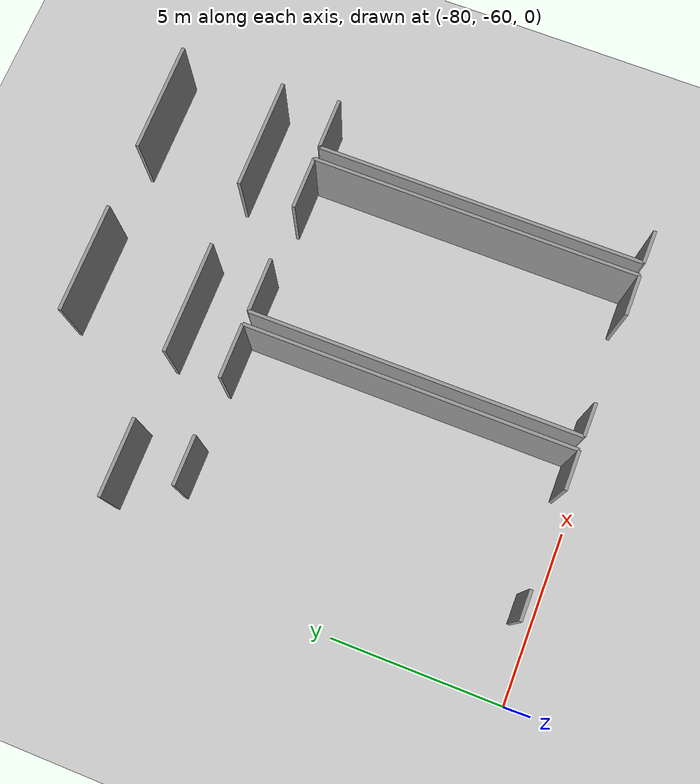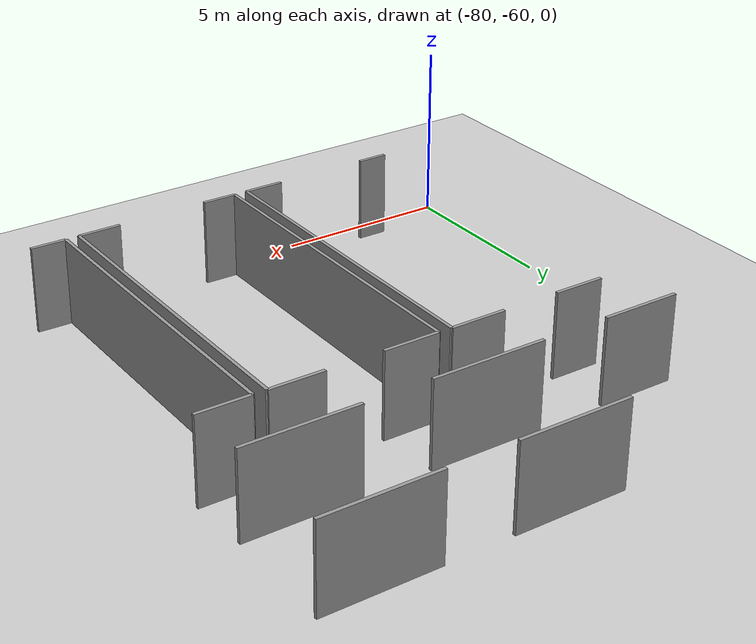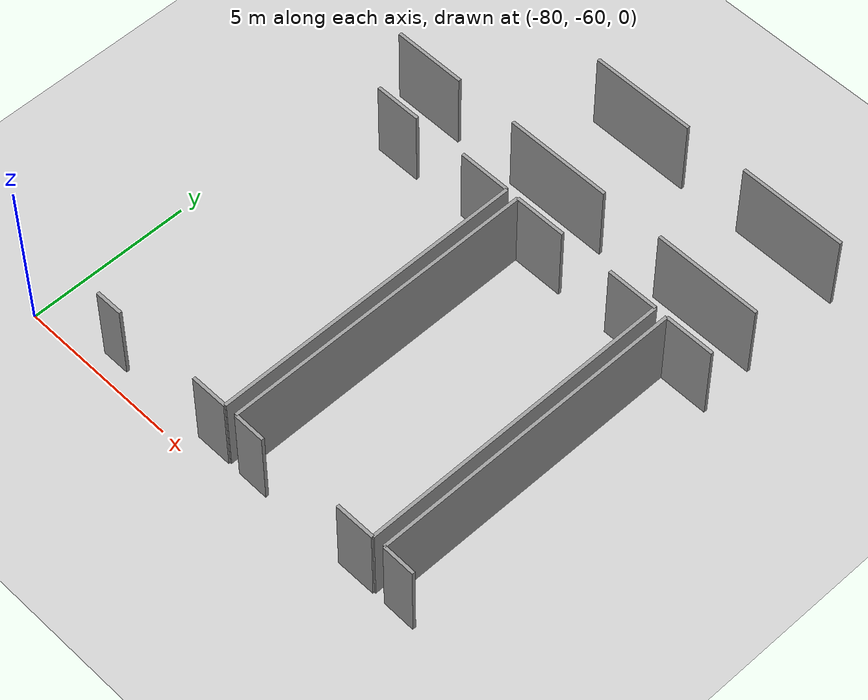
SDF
<sdf version="1.6">
 <world name="default">
  <model name="ground_plane">
   <static>1</static>
   <link name="link">
    <collision name="collision">
     <geometry><plane><normal>0 0 1</normal><size>100 100</size></plane></geometry>
     <surface><friction><ode><mu>100</mu><mu2>50</mu2></ode></friction></surface>
    </collision>
    <visual name="visual">
     <cast_shadows>0</cast_shadows>
     <geometry><plane><normal>0 0 1</normal><size>100 100</size></plane></geometry>
     <material>
      <script><uri>file://media/materials/scripts/gazebo.material</uri><name>Gazebo/Grey</name></script>
     </material>
    </visual>
   </link>
  </model>
  <model name="0510045922_A-40">
   <static>1</static>
   <link name="Wall_1121">
    <collision name="Wall_1121_Collision">
     <geometry><box><size>9.61631823092 0.1 2.5</size></box></geometry>
     <pose>4.80815911546 0 1.25 0 0 0</pose>
    </collision>
    <visual name="Wall_1121_Visual">
     <pose>4.80815911546 0 1.25 0 0 0</pose>
     <geometry><box><size>9.61631823092 0.1 2.5</size></box></geometry>
     <material>
      <script><uri>file://media/materials/scripts/gazebo.material</uri><name>Gazebo/Grey</name></script>
      <ambient>1 1 1 1</ambient>
     </material>
    </visual>
    <pose>66.6081718244 -160.609620639 0 0 0 1.57079632679</pose>
   </link>
   <link name="Wall_1122">
    <collision name="Wall_1122_Collision">
     <geometry><box><size>1.54057317151 0.1 2.5</size></box></geometry>
     <pose>0.770286585753 0 1.25 0 0 0</pose>
    </collision>
    <visual name="Wall_1122_Visual">
     <pose>0.770286585753 0 1.25 0 0 0</pose>
     <geometry><box><size>1.54057317151 0.1 2.5</size></box></geometry>
     <material>
      <script><uri>file://media/materials/scripts/gazebo.material</uri><name>Gazebo/Grey</name></script>
      <ambient>1 1 1 1</ambient>
     </material>
    </visual>
    <pose>66.6081718244 -150.993302408 0 0 0 0.0</pose>
   </link>
   <link name="Wall_1125">
    <collision name="Wall_1125_Collision">
     <geometry><box><size>1.01150940506 0.1 2.5</size></box></geometry>
     <pose>0.505754702532 0 1.25 0 0 0</pose>
    </collision>
    <visual name="Wall_1125_Visual">
     <pose>0.505754702532 0 1.25 0 0 0</pose>
     <geometry><box><size>1.01150940506 0.1 2.5</size></box></geometry>
     <material>
      <script><uri>file://media/materials/scripts/gazebo.material</uri><name>Gazebo/Grey</name></script>
      <ambient>1 1 1 1</ambient>
     </material>
    </visual>
    <pose>67.6195462922 -160.626142213 0 0 0 3.12525834371</pose>
   </link>
   <link name="Wall_1126">
    <collision name="Wall_1126_Collision">
     <geometry><box><size>9.62241850416 0.1 2.5</size></box></geometry>
     <pose>4.81120925208 0 1.25 0 0 0</pose>
    </collision>
    <visual name="Wall_1126_Visual">
     <pose>4.81120925208 0 1.25 0 0 0</pose>
     <geometry><box><size>9.62241850416 0.1 2.5</size></box></geometry>
     <material>
      <script><uri>file://media/materials/scripts/gazebo.material</uri><name>Gazebo/Grey</name></script>
      <ambient>1 1 1 1</ambient>
     </material>
    </visual>
    <pose>61.3965050518 -160.609366461 0 0 0 1.57079632679</pose>
   </link>
   <link name="Wall_1127">
    <collision name="Wall_1127_Collision">
     <geometry><box><size>1.60691364301 0.1 2.5</size></box></geometry>
     <pose>0.803456821503 0 1.25 0 0 0</pose>
    </collision>
    <visual name="Wall_1127_Visual">
     <pose>0.803456821503 0 1.25 0 0 0</pose>
     <geometry><box><size>1.60691364301 0.1 2.5</size></box></geometry>
     <material>
      <script><uri>file://media/materials/scripts/gazebo.material</uri><name>Gazebo/Grey</name></script>
      <ambient>1 1 1 1</ambient>
     </material>
    </visual>
    <pose>61.3965050518 -150.986947957 0 0 0 0.0</pose>
   </link>
   <link name="Wall_1128">
    <collision name="Wall_1128_Collision">
     <geometry><box><size>1.57666645485 0.1 2.5</size></box></geometry>
     <pose>0.788333227426 0 1.25 0 0 0</pose>
    </collision>
    <visual name="Wall_1128_Visual">
     <pose>0.788333227426 0 1.25 0 0 0</pose>
     <geometry><box><size>1.57666645485 0.1 2.5</size></box></geometry>
     <material>
      <script><uri>file://media/materials/scripts/gazebo.material</uri><name>Gazebo/Grey</name></script>
      <ambient>1 1 1 1</ambient>
     </material>
    </visual>
    <pose>64.6469339773 -150.986947957 0 0 0 0.0</pose>
   </link>
   <link name="Wall_1129">
    <collision name="Wall_1129_Collision">
     <geometry><box><size>9.63207727013 0.1 2.5</size></box></geometry>
     <pose>4.81603863506 0 1.25 0 0 0</pose>
    </collision>
    <visual name="Wall_1129_Visual">
     <pose>4.81603863506 0 1.25 0 0 0</pose>
     <geometry><box><size>9.63207727013 0.1 2.5</size></box></geometry>
     <material>
      <script><uri>file://media/materials/scripts/gazebo.material</uri><name>Gazebo/Grey</name></script>
      <ambient>1 1 1 1</ambient>
     </material>
    </visual>
    <pose>66.2236004321 -150.986947957 0 0 0 -1.57079632679</pose>
   </link>
   <link name="Wall_1130">
    <collision name="Wall_1130_Collision">
     <geometry><box><size>1.21903793607 0.1 2.5</size></box></geometry>
     <pose>0.609518968037 0 1.25 0 0 0</pose>
    </collision>
    <visual name="Wall_1130_Visual">
     <pose>0.609518968037 0 1.25 0 0 0</pose>
     <geometry><box><size>1.21903793607 0.1 2.5</size></box></geometry>
     <material>
      <script><uri>file://media/materials/scripts/gazebo.material</uri><name>Gazebo/Grey</name></script>
      <ambient>1 1 1 1</ambient>
     </material>
    </visual>
    <pose>66.2236004321 -160.619025227 0 0 0 3.14159265359</pose>
   </link>
   <link name="Wall_1131">
    <collision name="Wall_1131_Collision">
     <geometry><box><size>0.985495640082 0.1 2.5</size></box></geometry>
     <pose>0.492747820041 0 1.25 0 0 0</pose>
    </collision>
    <visual name="Wall_1131_Visual">
     <pose>0.492747820041 0 1.25 0 0 0</pose>
     <geometry><box><size>0.985495640082 0.1 2.5</size></box></geometry>
     <material>
      <script><uri>file://media/materials/scripts/gazebo.material</uri><name>Gazebo/Grey</name></script>
      <ambient>1 1 1 1</ambient>
     </material>
    </visual>
    <pose>62.3819533583 -160.619025227 0 0 0 3.13179157461</pose>
   </link>
   <link name="Wall_1133">
    <collision name="Wall_1133_Collision">
     <geometry><box><size>1.44728982652 0.1 2.5</size></box></geometry>
     <pose>0.723644913262 0 1.25 0 0 0</pose>
    </collision>
    <visual name="Wall_1133_Visual">
     <pose>0.723644913262 0 1.25 0 0 0</pose>
     <geometry><box><size>1.44728982652 0.1 2.5</size></box></geometry>
     <material>
      <script><uri>file://media/materials/scripts/gazebo.material</uri><name>Gazebo/Grey</name></script>
      <ambient>1 1 1 1</ambient>
     </material>
    </visual>
    <pose>56.2664294338 -150.982372752 0 0 0 0.0</pose>
   </link>
   <link name="Wall_1134">
    <collision name="Wall_1134_Collision">
     <geometry><box><size>1.61479316261 0.1 2.5</size></box></geometry>
     <pose>0.807396581305 0 1.25 0 0 0</pose>
    </collision>
    <visual name="Wall_1134_Visual">
     <pose>0.807396581305 0 1.25 0 0 0</pose>
     <geometry><box><size>1.61479316261 0.1 2.5</size></box></geometry>
     <material>
      <script><uri>file://media/materials/scripts/gazebo.material</uri><name>Gazebo/Grey</name></script>
      <ambient>1 1 1 1</ambient>
     </material>
    </visual>
    <pose>59.3890067993 -150.982372752 0 0 0 0.0</pose>
   </link>
   <link name="Wall_1135">
    <collision name="Wall_1135_Collision">
     <geometry><box><size>9.62623117494 0.1 2.5</size></box></geometry>
     <pose>4.81311558747 0 1.25 0 0 0</pose>
    </collision>
    <visual name="Wall_1135_Visual">
     <pose>4.81311558747 0 1.25 0 0 0</pose>
     <geometry><box><size>9.62623117494 0.1 2.5</size></box></geometry>
     <material>
      <script><uri>file://media/materials/scripts/gazebo.material</uri><name>Gazebo/Grey</name></script>
      <ambient>1 1 1 1</ambient>
     </material>
    </visual>
    <pose>61.0037999619 -150.982372752 0 0 0 -1.57079632679</pose>
   </link>
   <link name="Wall_1136">
    <collision name="Wall_1136_Collision">
     <geometry><box><size>1.13871767173 0.1 2.5</size></box></geometry>
     <pose>0.569358835865 0 1.25 0 0 0</pose>
    </collision>
    <visual name="Wall_1136_Visual">
     <pose>0.569358835865 0 1.25 0 0 0</pose>
     <geometry><box><size>1.13871767173 0.1 2.5</size></box></geometry>
     <material>
      <script><uri>file://media/materials/scripts/gazebo.material</uri><name>Gazebo/Grey</name></script>
      <ambient>1 1 1 1</ambient>
     </material>
    </visual>
    <pose>61.0037999619 -160.608603927 0 0 0 3.14159265359</pose>
   </link>
   <link name="Wall_1137">
    <collision name="Wall_1137_Collision">
     <geometry><box><size>0.862680906679 0.1 2.5</size></box></geometry>
     <pose>0.431340453339 0 1.25 0 0 0</pose>
    </collision>
    <visual name="Wall_1137_Visual">
     <pose>0.431340453339 0 1.25 0 0 0</pose>
     <geometry><box><size>0.862680906679 0.1 2.5</size></box></geometry>
     <material>
      <script><uri>file://media/materials/scripts/gazebo.material</uri><name>Gazebo/Grey</name></script>
      <ambient>1 1 1 1</ambient>
     </material>
    </visual>
    <pose>57.1291097414 -160.608603927 0 0 0 -3.14041410375</pose>
   </link>
   <link name="Wall_1146">
    <collision name="Wall_1146_Collision">
     <geometry><box><size>3.248141323 0.1 2.5</size></box></geometry>
     <pose>1.6240706615 0 1.25 0 0 0</pose>
    </collision>
    <visual name="Wall_1146_Visual">
     <pose>1.6240706615 0 1.25 0 0 0</pose>
     <geometry><box><size>3.248141323 0.1 2.5</size></box></geometry>
     <material>
      <script><uri>file://media/materials/scripts/gazebo.material</uri><name>Gazebo/Grey</name></script>
      <ambient>1 1 1 1</ambient>
     </material>
    </visual>
    <pose>59.5712524623 -146.16722374 0 0 0 0.0</pose>
   </link>
   <link name="Wall_1147">
    <collision name="Wall_1147_Collision">
     <geometry><box><size>3.3076189871 0.1 2.5</size></box></geometry>
     <pose>1.65380949355 0 1.25 0 0 0</pose>
    </collision>
    <visual name="Wall_1147_Visual">
     <pose>1.65380949355 0 1.25 0 0 0</pose>
     <geometry><box><size>3.3076189871 0.1 2.5</size></box></geometry>
     <material>
      <script><uri>file://media/materials/scripts/gazebo.material</uri><name>Gazebo/Grey</name></script>
      <ambient>1 1 1 1</ambient>
     </material>
    </visual>
    <pose>64.7694477982 -146.16722374 0 0 0 0.0</pose>
   </link>
   <link name="Wall_1170">
    <collision name="Wall_1170_Collision">
     <geometry><box><size>3.30634809684 0.1 2.5</size></box></geometry>
     <pose>1.65317404842 0 1.25 0 0 0</pose>
    </collision>
    <visual name="Wall_1170_Visual">
     <pose>1.65317404842 0 1.25 0 0 0</pose>
     <geometry><box><size>3.30634809684 0.1 2.5</size></box></geometry>
     <material>
      <script><uri>file://media/materials/scripts/gazebo.material</uri><name>Gazebo/Grey</name></script>
      <ambient>1 1 1 1</ambient>
     </material>
    </visual>
    <pose>68.0569867192 -149.293867955 0 0 0 3.14159265359</pose>
   </link>
   <link name="Wall_1171">
    <collision name="Wall_1171_Collision">
     <geometry><box><size>3.30482302853 0.1 2.5</size></box></geometry>
     <pose>1.65241151427 0 1.25 0 0 0</pose>
    </collision>
    <visual name="Wall_1171_Visual">
     <pose>1.65241151427 0 1.25 0 0 0</pose>
     <geometry><box><size>3.30482302853 0.1 2.5</size></box></geometry>
     <material>
      <script><uri>file://media/materials/scripts/gazebo.material</uri><name>Gazebo/Grey</name></script>
      <ambient>1 1 1 1</ambient>
     </material>
    </visual>
    <pose>62.8257482366 -149.293867955 0 0 0 3.14159265359</pose>
   </link>
   <link name="Wall_1172">
    <collision name="Wall_1172_Collision">
     <geometry><box><size>2.27057253606 0.1 2.5</size></box></geometry>
     <pose>1.13528626803 0 1.25 0 0 0</pose>
    </collision>
    <visual name="Wall_1172_Visual">
     <pose>1.13528626803 0 1.25 0 0 0</pose>
     <geometry><box><size>2.27057253606 0.1 2.5</size></box></geometry>
     <material>
      <script><uri>file://media/materials/scripts/gazebo.material</uri><name>Gazebo/Grey</name></script>
      <ambient>1 1 1 1</ambient>
     </material>
    </visual>
    <pose>57.5624833196 -149.293867955 0 0 0 3.14159265359</pose>
   </link>
   <pose>-134.15 101.210036856 0 0 0 0</pose>
  </model>
 </world>
</sdf>
